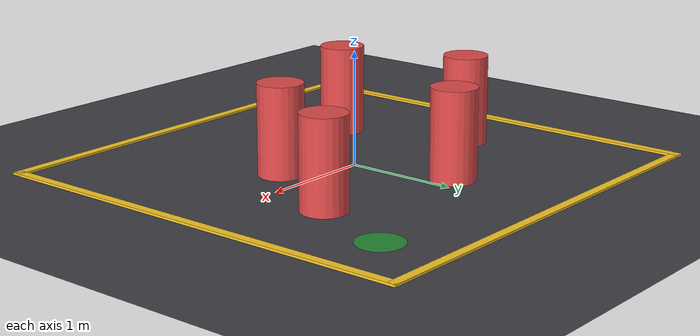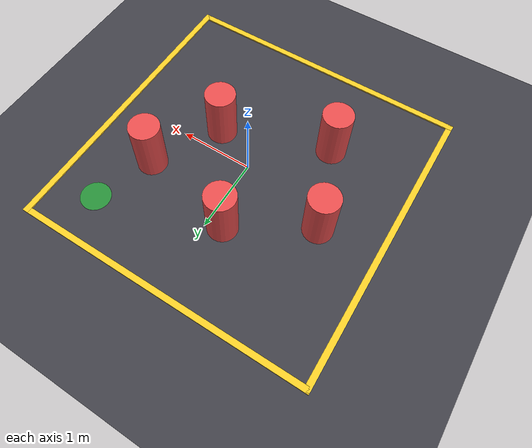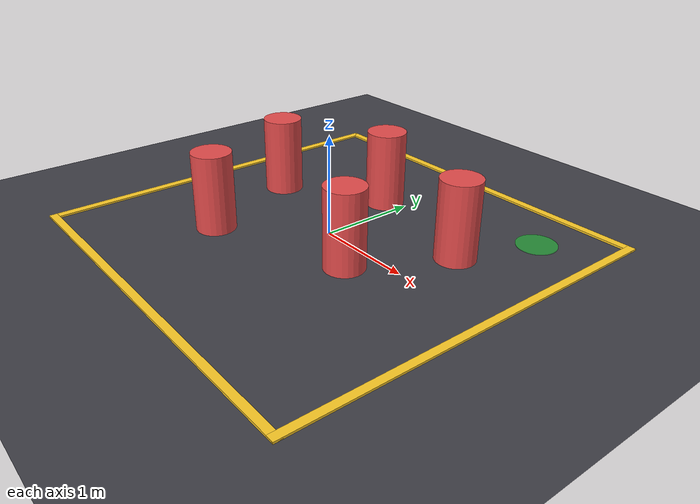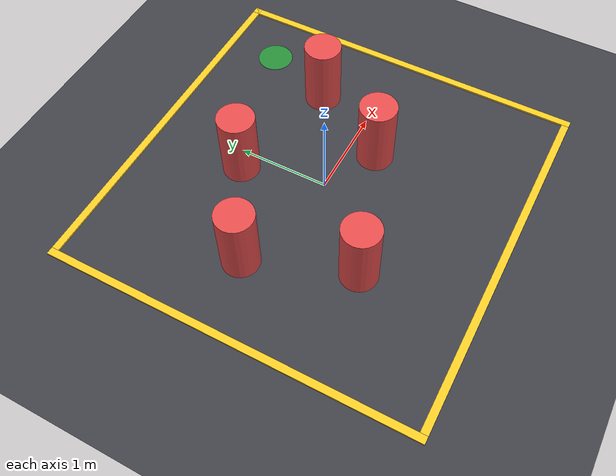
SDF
<?xml version="1.0" ?>
<sdf version="1.8">
  <world name="rl_arena">

    <plugin filename="gz-sim-physics-system"
            name="gz::sim::systems::Physics"/>
    <plugin filename="gz-sim-user-commands-system"
            name="gz::sim::systems::UserCommands"/>
    <plugin filename="gz-sim-scene-broadcaster-system"
            name="gz::sim::systems::SceneBroadcaster"/>
    <plugin filename="gz-sim-sensors-system"
            name="gz::sim::systems::Sensors">
      <render_engine>ogre2</render_engine>
    </plugin>
    <plugin filename="gz-sim-imu-system"
            name="gz::sim::systems::Imu"/>

    <gravity>0 0 -9.81</gravity>

    <light type="directional" name="sun">
      <cast_shadows>true</cast_shadows>
      <pose>0 0 10 0 0 0</pose>
      <diffuse>1.0 1.0 1.0 1</diffuse>
      <specular>0.2 0.2 0.2 1</specular>
      <direction>-0.3 0.3 -1</direction>
    </light>

    <!-- Ground plane -->
    <model name="ground_plane">
      <static>true</static>
      <link name="ground_plane_link">
        <collision name="ground_plane_collision">
          <geometry><plane><normal>0 0 1</normal><size>10 10</size></plane></geometry>
        </collision>
        <visual name="ground_plane_visual">
          <geometry><plane><normal>0 0 1</normal><size>10 10</size></plane></geometry>
          <material>
            <ambient>0.15 0.15 0.17 1</ambient>
            <diffuse>0.25 0.25 0.28 1</diffuse>
          </material>
        </visual>
      </link>
    </model>

    <!-- Arena boundary: ground-painted strips (0.02 m tall) instead of walls
         so camera angles aren't occluded. Yellow-orange to stand out. -->
    <model name="wall_x_neg">
      <static>true</static>
      <pose>-2.0 0 0.01 0 0 0</pose>
      <link name="link">
        <visual name="v"><geometry><box><size>0.08 4.08 0.02</size></box></geometry>
          <material><ambient>0.95 0.7 0.1 1</ambient><diffuse>1.0 0.8 0.15 1</diffuse></material></visual>
      </link>
    </model>
    <model name="wall_x_pos">
      <static>true</static>
      <pose>2.0 0 0.01 0 0 0</pose>
      <link name="link">
        <visual name="v"><geometry><box><size>0.08 4.08 0.02</size></box></geometry>
          <material><ambient>0.95 0.7 0.1 1</ambient><diffuse>1.0 0.8 0.15 1</diffuse></material></visual>
      </link>
    </model>
    <model name="wall_y_neg">
      <static>true</static>
      <pose>0 -2.0 0.01 0 0 0</pose>
      <link name="link">
        <visual name="v"><geometry><box><size>4.08 0.08 0.02</size></box></geometry>
          <material><ambient>0.95 0.7 0.1 1</ambient><diffuse>1.0 0.8 0.15 1</diffuse></material></visual>
      </link>
    </model>
    <model name="wall_y_pos">
      <static>true</static>
      <pose>0 2.0 0.01 0 0 0</pose>
      <link name="link">
        <visual name="v"><geometry><box><size>4.08 0.08 0.02</size></box></geometry>
          <material><ambient>0.95 0.7 0.1 1</ambient><diffuse>1.0 0.8 0.15 1</diffuse></material></visual>
      </link>
    </model>

    <!-- Goal marker (thin disc; position to be updated per-run or overridden) -->
    <model name="goal_marker">
      <static>true</static>
      <pose>1.4 1.4 0.005 0 0 0</pose>
      <link name="link">
        <visual name="v"><geometry><cylinder><radius>0.20</radius><length>0.01</length></cylinder></geometry>
          <material><ambient>0.1 0.8 0.2 0.5</ambient><diffuse>0.1 0.9 0.2 0.5</diffuse></material></visual>
      </link>
    </model>

    <!-- 5 static cylindrical obstacles (radius 0.20 m, height 0.8 m).
         Positions picked to leave clear but non-trivial paths across the arena.
         Phase B: adjust per RL layout. -->
    <model name="obstacle_1">
      <static>true</static>
      <pose>-0.8 -0.8 0.4 0 0 0</pose>
      <link name="link">
        <collision name="c"><geometry><cylinder><radius>0.20</radius><length>0.8</length></cylinder></geometry></collision>
        <visual name="v"><geometry><cylinder><radius>0.20</radius><length>0.8</length></cylinder></geometry>
          <material><ambient>0.8 0.2 0.2 1</ambient><diffuse>0.9 0.3 0.3 1</diffuse></material></visual>
      </link>
    </model>
    <model name="obstacle_2">
      <static>true</static>
      <pose>0.6 -0.3 0.4 0 0 0</pose>
      <link name="link">
        <collision name="c"><geometry><cylinder><radius>0.20</radius><length>0.8</length></cylinder></geometry></collision>
        <visual name="v"><geometry><cylinder><radius>0.20</radius><length>0.8</length></cylinder></geometry>
          <material><ambient>0.8 0.2 0.2 1</ambient><diffuse>0.9 0.3 0.3 1</diffuse></material></visual>
      </link>
    </model>
    <model name="obstacle_3">
      <static>true</static>
      <pose>-0.2 0.9 0.4 0 0 0</pose>
      <link name="link">
        <collision name="c"><geometry><cylinder><radius>0.20</radius><length>0.8</length></cylinder></geometry></collision>
        <visual name="v"><geometry><cylinder><radius>0.20</radius><length>0.8</length></cylinder></geometry>
          <material><ambient>0.8 0.2 0.2 1</ambient><diffuse>0.9 0.3 0.3 1</diffuse></material></visual>
      </link>
    </model>
    <model name="obstacle_4">
      <static>true</static>
      <pose>1.1 0.6 0.4 0 0 0</pose>
      <link name="link">
        <collision name="c"><geometry><cylinder><radius>0.20</radius><length>0.8</length></cylinder></geometry></collision>
        <visual name="v"><geometry><cylinder><radius>0.20</radius><length>0.8</length></cylinder></geometry>
          <material><ambient>0.8 0.2 0.2 1</ambient><diffuse>0.9 0.3 0.3 1</diffuse></material></visual>
      </link>
    </model>
    <model name="obstacle_5">
      <static>true</static>
      <pose>-1.2 0.3 0.4 0 0 0</pose>
      <link name="link">
        <collision name="c"><geometry><cylinder><radius>0.20</radius><length>0.8</length></cylinder></geometry></collision>
        <visual name="v"><geometry><cylinder><radius>0.20</radius><length>0.8</length></cylinder></geometry>
          <material><ambient>0.8 0.2 0.2 1</ambient><diffuse>0.9 0.3 0.3 1</diffuse></material></visual>
      </link>
    </model>

    <model name="record_cam">
      <static>true</static>
      <pose>0 0 4.0 0 1.5707963 0</pose>
      <link name="link">
        <sensor name="camera" type="camera">
          <pose>0 0 0 0 0 0</pose>
          <camera>
            <horizontal_fov>1.2</horizontal_fov>
            <image><width>1280</width><height>720</height></image>
            <clip><near>0.1</near><far>20</far></clip>
          </camera>
          <always_on>1</always_on>
          <update_rate>30</update_rate>
          <visualize>false</visualize>
          <topic>/camera/image</topic>
        </sensor>
      </link>
    </model>

    <gui fullscreen='0'>
      <camera name="user_camera">
        <pose>3.0 -3.0 2.5 0 0.55 2.35</pose>
      </camera>
    </gui>

  </world>
</sdf>
